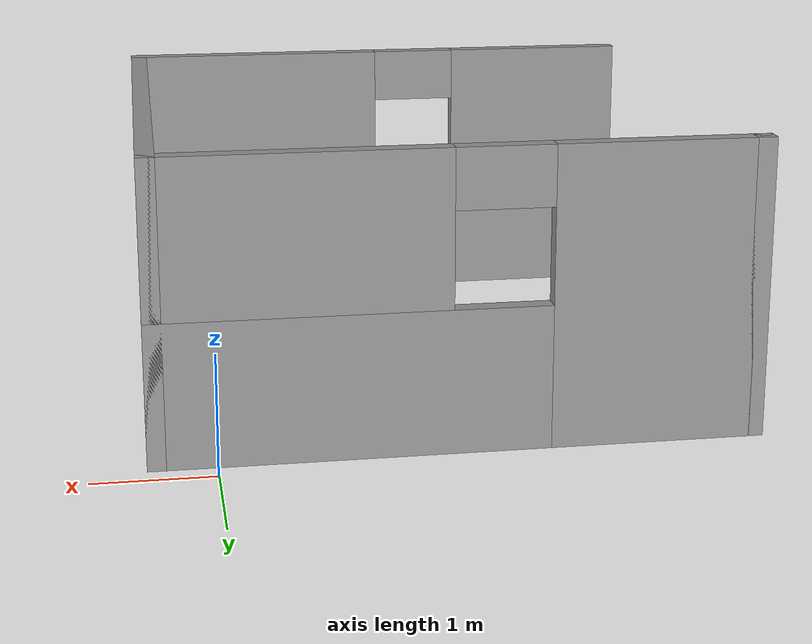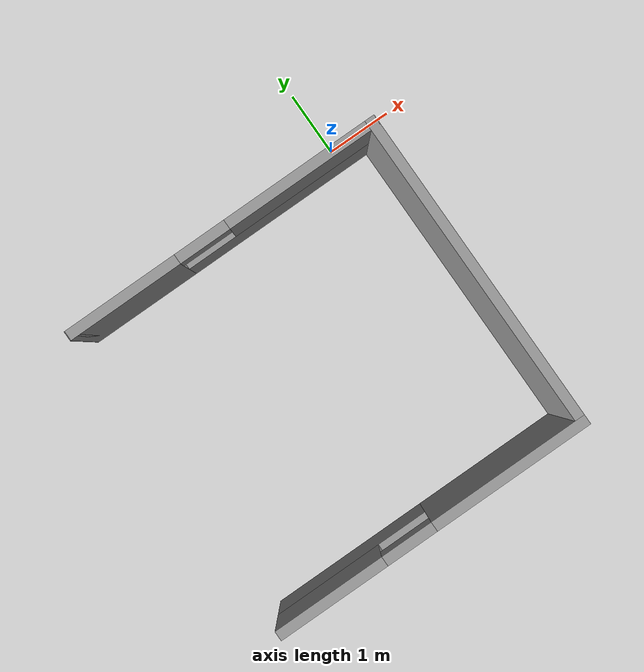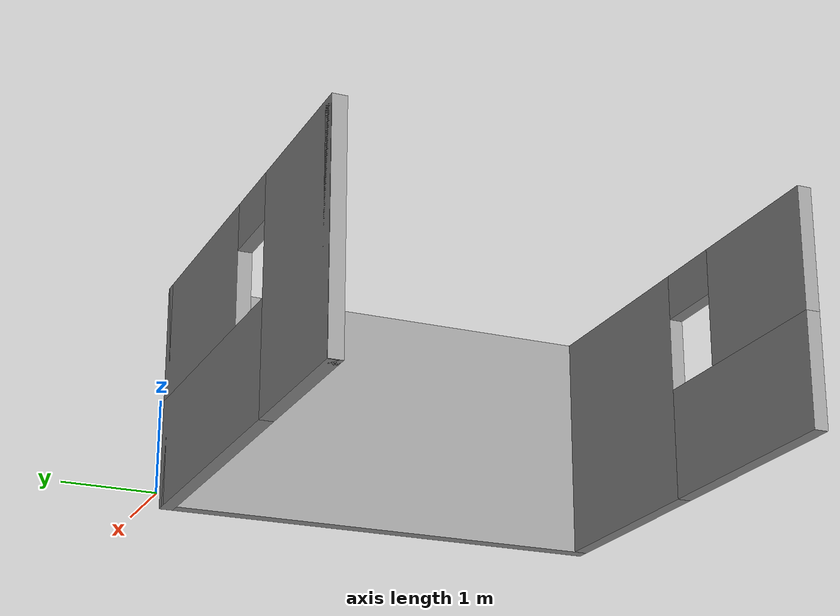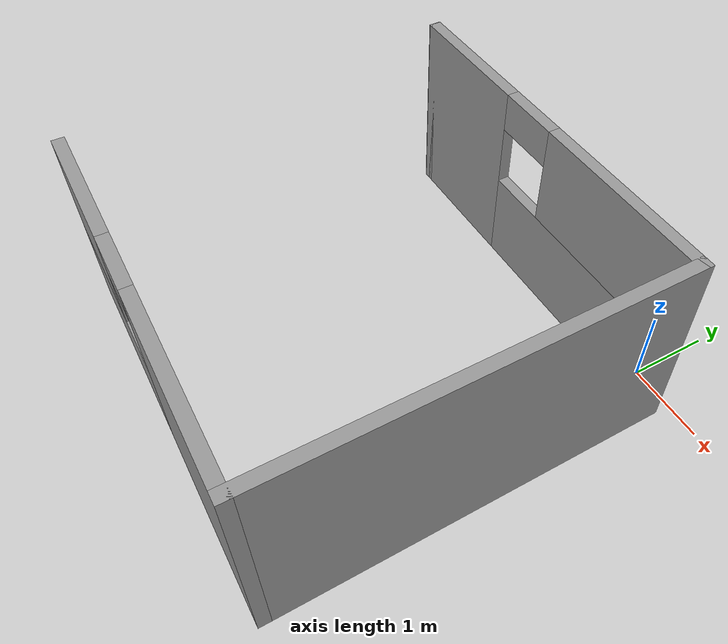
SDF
<?xml version='1.0'?>
<sdf version='1.6'>
  <model name='house_5x5_open'>
    <pose frame=''>-1.95328 -2.68559 0 0 -0 0</pose>
    <link name='Wall_10'>
      <pose frame=''>0.005 2.425 0 0 -0 0</pose>
      <visual name='Wall_10_Visual_0'>
        <pose frame=''>-1.61506 0 1.25 0 -0 0</pose>
        <geometry>
          <box>
            <size>1.76988 0.15 2.5</size>
          </box>
        </geometry>
        <material>
          <script>
            <uri>file://media/materials/scripts/gazebo.material</uri>
            <name>Gazebo/Grey</name>
          </script>
          <ambient>1 1 1 1</ambient>
        </material>
        <meta>
          <layer>0</layer>
        </meta>
      </visual>
      <collision name='Wall_10_Collision_0'>
        <geometry>
          <box>
            <size>1.76988 0.15 2.5</size>
          </box>
        </geometry>
        <pose frame=''>-1.61506 0 1.25 0 -0 0</pose>
      </collision>
      <visual name='Wall_10_Visual_1'>
        <pose frame=''>0.884943 0 0.6 0 -0 0</pose>
        <geometry>
          <box>
            <size>3.23012 0.15 1.2</size>
          </box>
        </geometry>
        <material>
          <script>
            <uri>file://media/materials/scripts/gazebo.material</uri>
            <name>Gazebo/Grey</name>
          </script>
          <ambient>1 1 1 1</ambient>
        </material>
        <meta>
          <layer>0</layer>
        </meta>
      </visual>
      <collision name='Wall_10_Collision_1'>
        <geometry>
          <box>
            <size>3.23012 0.15 1.2</size>
          </box>
        </geometry>
        <pose frame=''>0.884943 0 0.6 0 -0 0</pose>
      </collision>
      <visual name='Wall_10_Visual_2'>
        <pose frame=''>1.28494 0 1.85 0 -0 0</pose>
        <geometry>
          <box>
            <size>2.43011 0.15 1.3</size>
          </box>
        </geometry>
        <material>
          <script>
            <uri>file://media/materials/scripts/gazebo.material</uri>
            <name>Gazebo/Grey</name>
          </script>
          <ambient>1 1 1 1</ambient>
        </material>
        <meta>
          <layer>0</layer>
        </meta>
      </visual>
      <collision name='Wall_10_Collision_2'>
        <geometry>
          <box>
            <size>2.43011 0.15 1.3</size>
          </box>
        </geometry>
        <pose frame=''>1.28494 0 1.85 0 -0 0</pose>
      </collision>
      <visual name='Wall_10_Visual_3'>
        <pose frame=''>-0.330115 0 2.25 0 -0 0</pose>
        <geometry>
          <box>
            <size>0.8 0.15 0.5</size>
          </box>
        </geometry>
        <material>
          <script>
            <uri>file://media/materials/scripts/gazebo.material</uri>
            <name>Gazebo/Grey</name>
          </script>
          <ambient>1 1 1 1</ambient>
        </material>
        <meta>
          <layer>0</layer>
        </meta>
      </visual>
      <collision name='Wall_10_Collision_3'>
        <geometry>
          <box>
            <size>0.8 0.15 0.5</size>
          </box>
        </geometry>
        <pose frame=''>-0.330115 0 2.25 0 -0 0</pose>
      </collision>
    </link>
    <link name='Wall_11'>
      <collision name='Wall_11_Collision'>
        <geometry>
          <box>
            <size>5 0.15 2.5</size>
          </box>
        </geometry>
        <pose frame=''>0 0 1.25 0 -0 0</pose>
      </collision>
      <visual name='Wall_11_Visual'>
        <pose frame=''>0 0 1.25 0 -0 0</pose>
        <geometry>
          <box>
            <size>5 0.15 2.5</size>
          </box>
        </geometry>
        <material>
          <script>
            <uri>file://media/materials/scripts/gazebo.material</uri>
            <name>Gazebo/Grey</name>
          </script>
          <ambient>1 1 1 1</ambient>
        </material>
        <meta>
          <layer>0</layer>
        </meta>
      </visual>
      <pose frame=''>2.43 -0 0 0 -0 -1.5708</pose>
    </link>
    <link name='Wall_12'>
      <pose frame=''>0.005 -2.425 0 0 -0 3.14159</pose>
      <visual name='Wall_12_Visual_0'>
        <pose frame=''>-1.26181 0 1.25 0 -0 0</pose>
        <geometry>
          <box>
            <size>2.47638 0.15 2.5</size>
          </box>
        </geometry>
        <material>
          <script>
            <uri>file://media/materials/scripts/gazebo.material</uri>
            <name>Gazebo/Grey</name>
          </script>
          <ambient>1 1 1 1</ambient>
        </material>
        <meta>
          <layer>0</layer>
        </meta>
      </visual>
      <collision name='Wall_12_Collision_0'>
        <geometry>
          <box>
            <size>2.47638 0.15 2.5</size>
          </box>
        </geometry>
        <pose frame=''>-1.26181 0 1.25 0 -0 0</pose>
      </collision>
      <visual name='Wall_12_Visual_1'>
        <pose frame=''>1.23819 0 0.6 0 -0 0</pose>
        <geometry>
          <box>
            <size>2.52362 0.15 1.2</size>
          </box>
        </geometry>
        <material>
          <script>
            <uri>file://media/materials/scripts/gazebo.material</uri>
            <name>Gazebo/Grey</name>
          </script>
          <ambient>1 1 1 1</ambient>
        </material>
        <meta>
          <layer>0</layer>
        </meta>
      </visual>
      <collision name='Wall_12_Collision_1'>
        <geometry>
          <box>
            <size>2.52362 0.15 1.2</size>
          </box>
        </geometry>
        <pose frame=''>1.23819 0 0.6 0 -0 0</pose>
      </collision>
      <visual name='Wall_12_Visual_2'>
        <pose frame=''>1.63819 0 1.85 0 -0 0</pose>
        <geometry>
          <box>
            <size>1.72362 0.15 1.3</size>
          </box>
        </geometry>
        <material>
          <script>
            <uri>file://media/materials/scripts/gazebo.material</uri>
            <name>Gazebo/Grey</name>
          </script>
          <ambient>1 1 1 1</ambient>
        </material>
        <meta>
          <layer>0</layer>
        </meta>
      </visual>
      <collision name='Wall_12_Collision_2'>
        <geometry>
          <box>
            <size>1.72362 0.15 1.3</size>
          </box>
        </geometry>
        <pose frame=''>1.63819 0 1.85 0 -0 0</pose>
      </collision>
      <visual name='Wall_12_Visual_3'>
        <pose frame=''>0.376376 0 2.25 0 -0 0</pose>
        <geometry>
          <box>
            <size>0.8 0.15 0.5</size>
          </box>
        </geometry>
        <material>
          <script>
            <uri>file://media/materials/scripts/gazebo.material</uri>
            <name>Gazebo/Grey</name>
          </script>
          <ambient>1 1 1 1</ambient>
        </material>
        <meta>
          <layer>0</layer>
        </meta>
      </visual>
      <collision name='Wall_12_Collision_3'>
        <geometry>
          <box>
            <size>0.8 0.15 0.5</size>
          </box>
        </geometry>
        <pose frame=''>0.376376 0 2.25 0 -0 0</pose>
      </collision>
    </link>
    <link name='Wall_9'>
      <collision name='Wall_9_Collision'>
        <geometry>
          <box>
            <size>0.16 0.15 2.5</size>
          </box>
        </geometry>
        <pose frame=''>0 0 1.25 0 -0 0</pose>
      </collision>
      <visual name='Wall_9_Visual'>
        <pose frame=''>0 0 1.25 0 -0 0</pose>
        <geometry>
          <box>
            <size>0.16 0.15 2.5</size>
          </box>
        </geometry>
        <material>
          <script>
            <uri>file://media/materials/scripts/gazebo.material</uri>
            <name>Gazebo/Grey</name>
          </script>
          <ambient>1 1 1 1</ambient>
        </material>
        <meta>
          <layer>0</layer>
        </meta>
      </visual>
      <pose frame=''>-2.425 2.425 0 0 -0 0</pose>
    </link>
    <static>1</static>
  </model>
</sdf>
